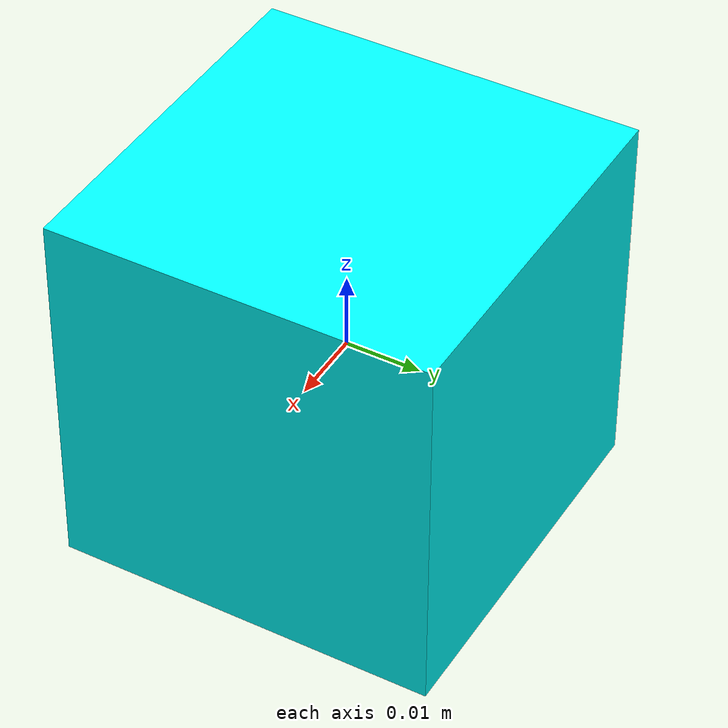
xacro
<?xml version="1.0"?>
<robot xmlns:xacro="http://ros.org/wiki/xacro" name="floating_base">

<xacro:property name="PI" value="3.14159265359" />
<xacro:property name="PI_2" value="1.57079632679" />

<xacro:macro name="floating_base_link" params="name">
	<link name="floating_base_${name}">
	    <visual>
	     <origin xyz="0 0 0" rpy="0 0 0" />
	     <geometry>
		<box size="0.05 0.05 0.05" />
	     </geometry>
	     <material name="Cyan">
	       <color rgba="0 1.0 1.0 1.0"/>
	     </material>
	   </visual>
	</link>
</xacro:macro>

<xacro:macro name="floating_base_joint" params="name type parent_link child_link axis_xyz">
	<joint name="floating_base_${name}" type="${type}">
	  <parent link="floating_base_${parent_link}"/>
          <child link="floating_base_${child_link}"/>
          <origin xyz="0 0 0" rpy="0 0 0" />
          <axis xyz="${axis_xyz}" />
	  <limit velocity="1000.0" effort="1000.0" lower="-10.0" upper="10.0" />
        </joint>
</xacro:macro>

<!-- LINKS -->
<xacro:floating_base_link name="world"/>
<xacro:floating_base_link name="l1"/>
<xacro:floating_base_link name="l2"/>
<xacro:floating_base_link name="l3"/>
<xacro:floating_base_link name="l4"/>
<xacro:floating_base_link name="l5"/>
<xacro:floating_base_link name="l6"/>

<!-- JOINTS -->
<xacro:floating_base_joint name="Px" type="prismatic" parent_link="world" child_link="l1" axis_xyz="1 0 0"/>
<xacro:floating_base_joint name="Py" type="prismatic" parent_link="l1" child_link="l2" axis_xyz="0 1 0"/>
<xacro:floating_base_joint name="Pz" type="prismatic" parent_link="l2" child_link="l3" axis_xyz="0 0 1"/>
<xacro:floating_base_joint name="Rx" type="revolute" parent_link="l3" child_link="l4" axis_xyz="1 0 0"/>
<xacro:floating_base_joint name="Ry" type="revolute" parent_link="l4" child_link="l5" axis_xyz="0 1 0"/>
<xacro:floating_base_joint name="Rz" type="revolute" parent_link="l5" child_link="l6" axis_xyz="0 0 1"/>

</robot>
